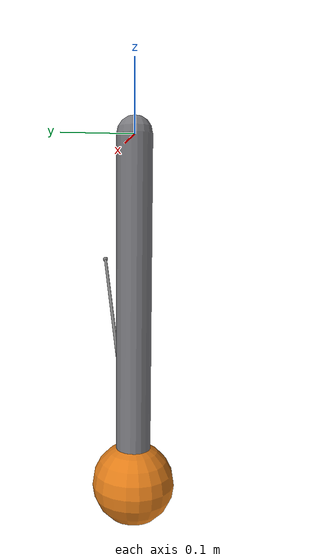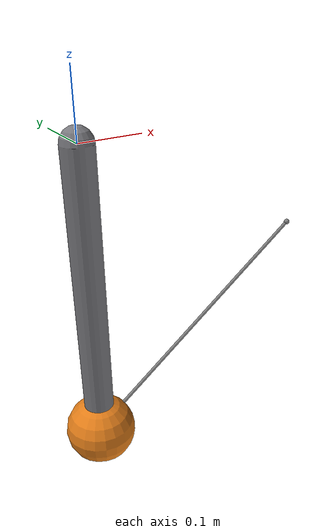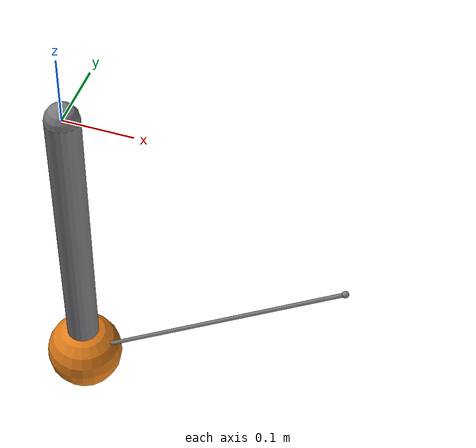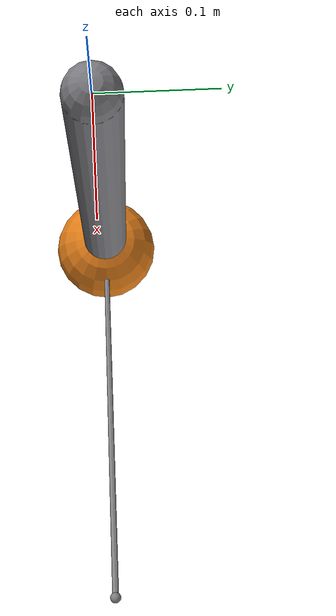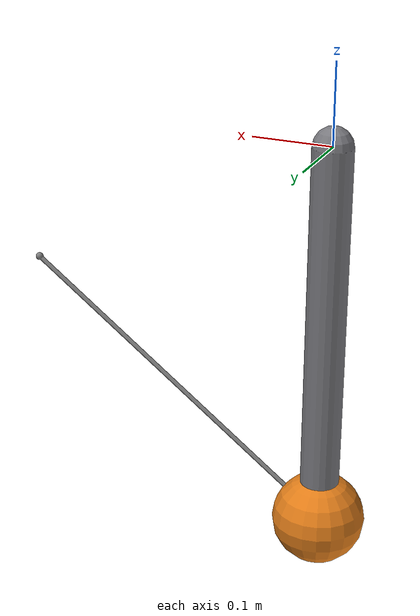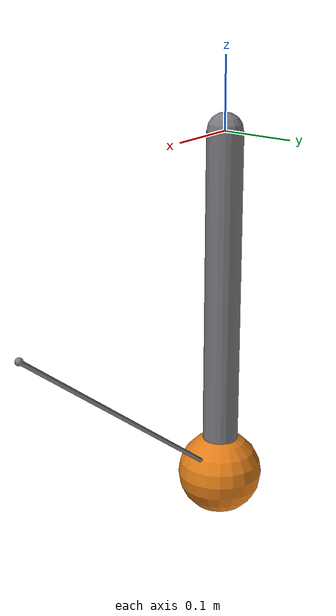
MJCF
<mujoco model="sensor-jacobians">
  <compiler angle="radian"/>
  <option gravity="0 0 -9.81" timestep="0.002"/>

  <default>
    <geom contype="0" conaffinity="0"/>
  </default>

  <worldbody>
    <site name="anchor" pos="0.4 0 -0.2"/>
    <body name="link" pos="0 0 0">
      <joint name="hinge" type="hinge" axis="0 1 0" damping="0.5"/>
      <inertial pos="0 0 -0.5" mass="5.0" diaginertia="0.5 0.5 0.01"/>
      <geom name="rod" type="capsule" size="0.025"
            fromto="0 0 0  0 0 -0.5" rgba="0.48 0.48 0.50 1"/>
      <geom name="tip" type="sphere" size="0.06"
            pos="0 0 -0.5" rgba="0.9 0.5 0.1 1"/>
      <site name="tip_site" pos="0 0 -0.5"/>
    </body>
  </worldbody>

  <tendon>
    <spatial name="cable">
      <site site="anchor"/>
      <site site="tip_site"/>
    </spatial>
  </tendon>

  <actuator>
    <motor name="torque" joint="hinge" gear="1"/>
  </actuator>

  <sensor>
    <tendonpos name="pos" tendon="cable"/>
    <tendonvel name="vel" tendon="cable"/>
    <actuatorfrc name="force" actuator="torque"/>
  </sensor>
</mujoco>
